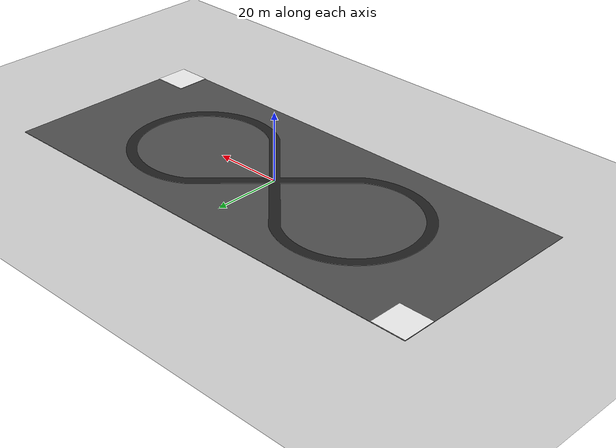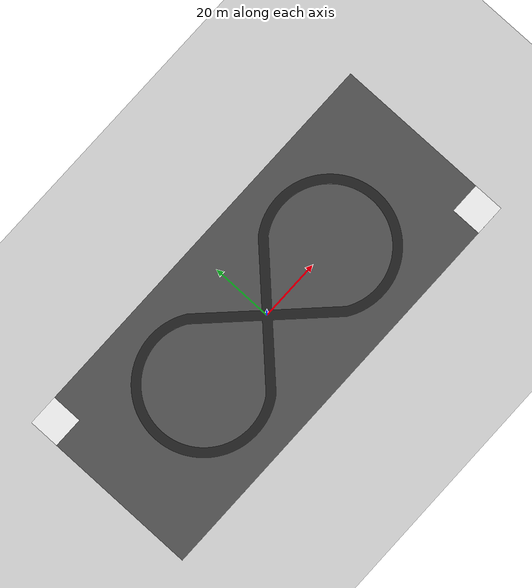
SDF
<sdf version="1.4">
 <world name="default">
  <include><uri>model://ground_plane</uri></include>
  <include><uri>model://sun</uri></include>
  <include><uri>model://challenge_1_plane</uri><name>challenge_1_plane</name></include>
  <include><uri>model://challenge_1_road</uri><name>challenge_1_road</name><pose>0 0 .15 0 0 0</pose></include>
  <include>
   <uri>model://challenge_1_start</uri>
   <name>challenge_1_start</name>
   <pose>65 -25 .15 0 0 0</pose>
  </include>
  <include>
   <uri>model://challenge_1_start</uri>
   <name>challenge_1_end</name>
   <pose>-65 25 .15 0 0 0</pose>
  </include>
 </world>
</sdf>

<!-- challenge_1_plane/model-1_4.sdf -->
<sdf version="1.4">
  <model name="challenge_1_plane">
    <static>true</static>
    <link name="link">
      <collision name="collision">
        <geometry>
          <box>
            <size>140 60 .15</size>
          </box>
        </geometry>
      </collision>
      <visual name="visual">
        <cast_shadows>false</cast_shadows>
        <geometry>
          <box>
            <size>140 60 .15</size>
          </box>
        </geometry>
        <material>
          <script>
            <uri>model://challenge_1_plane/materials/scripts</uri>
            <uri>model://challenge_1_plane/materials/textures</uri>
            <name>vrc/asphalt</name>
          </script>
        </material>
      </visual>
    </link>
  </model>
</sdf>

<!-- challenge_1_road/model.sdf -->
<sdf version='1.4'>
  <model name='road'>
    <link name='base_footprint'>
      <pose>0 0 0 0 -0 0</pose>
      <inertial>
        <pose>0 0 0 0 -0 0</pose>
        <mass>204100</mass>
        <inertia>
          <ixx>1.64481e+08</ixx>
          <ixy>0</ixy>
          <ixz>0</ixz>
          <iyy>1.959e+08</iyy>
          <iyz>0</iyz>
          <izz>3.14195e+07</izz>
        </inertia>
      </inertial>
      <collision name='base_footprint_collision_base_link'>
        <pose>0 0 0 1.5708 -0 0</pose>
        <geometry>
          <mesh>
            <scale>0.001 0.001 0.001</scale>
            <uri>model://challenge_1_road/meshes/challenge_1_road.stl</uri>
          </mesh>
        </geometry>
      </collision>
      <visual name='base_footprint_visual_base_link'>
        <pose>0 0 0 1.5708 -0 0</pose>
        <geometry>
          <mesh>
            <scale>0.001 0.001 0.001</scale>
            <uri>model://challenge_1_road/meshes/challenge_1_road.stl</uri>
          </mesh>
        </geometry>
        <material>
          <script>
            <uri>file://media/materials/scripts/gazebo.material</uri>
            <name>Gazebo/Black</name>
          </script>
        </material>
      </visual>
      <velocity_decay>
        <linear>0</linear>
        <angular>0</angular>
      </velocity_decay>
    </link>
  </model>
</sdf>

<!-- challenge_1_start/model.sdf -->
<sdf version="1.5">
  <model name="challenge_1_start">
    <static>true</static>
    <link name="link">
      <collision name="collision">
        <geometry>
          <box>
            <size>10 10 .15</size>
          </box>
        </geometry>
      </collision>
      <visual name="visual">
        <cast_shadows>false</cast_shadows>
        <geometry>
          <box>
            <size>10 10 .15</size>
          </box>
        </geometry>
        <material>
          <script>
            <uri>file://media/materials/scripts/gazebo.material</uri>
            <name>Gazebo/White</name>
          </script>
        </material>
      </visual>
    </link>
  </model>
</sdf>
